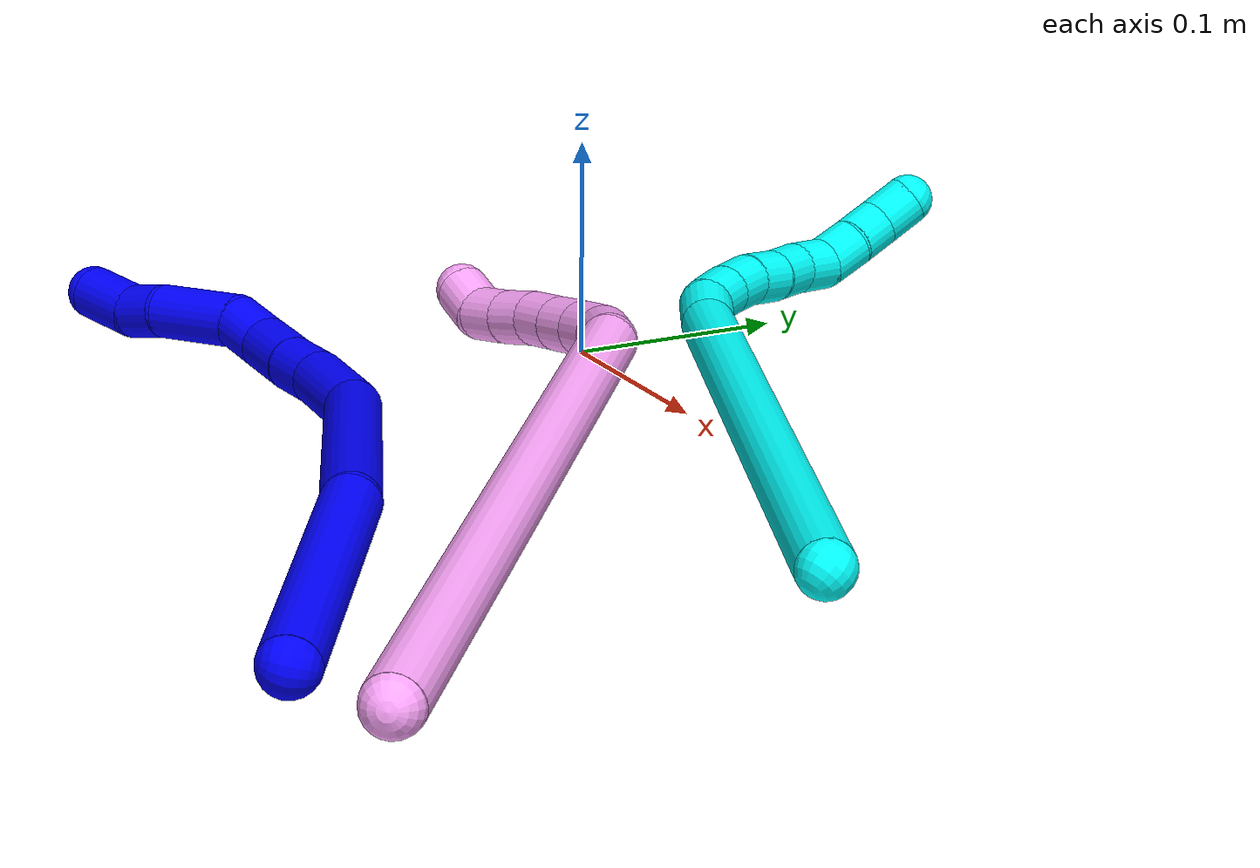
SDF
<sdf version="1.7">
 <world name="default">
  <model name="1">
   <static>0</static>
   <link name="1">
    <collision name="collision-cylinder-e_1_1_4">
     <pose>-0.056657 0.025792 0.006387 -1.32805 -1.13228 0.923055</pose>
     <geometry><cylinder><radius>0.0125</radius><length>0.125157</length></cylinder></geometry>
     <surface>
      <friction><ode><mu>1.16</mu><mu2>1.16</mu2><slip1>0</slip1><slip2>0</slip2></ode></friction>
      <contact><ode><kp>1e+06</kp><kd>1</kd><max_vel>0</max_vel><min_depth>0.001</min_depth></ode></contact>
     </surface>
    </collision>
    <visual name="visual-cylinder-e_1_1_4">
     <pose>-0.056657 0.025792 0.006387 -1.32805 -1.13228 0.923055</pose>
     <geometry><cylinder><radius>0.0125</radius><length>0.125157</length></cylinder></geometry>
     <material><ambient>0 0 1 1</ambient></material>
    </visual>
    <collision name="collision-cylinder-e_2_4_5">
     <pose>-0.173585 0.099635 0.01163 -1.5946 -0.897582 0.916332</pose>
     <geometry><cylinder><radius>0.0125</radius><length>0.154178</length></cylinder></geometry>
     <surface>
      <friction><ode><mu>1.16</mu><mu2>1.16</mu2><slip1>0</slip1><slip2>0</slip2></ode></friction>
      <contact><ode><kp>1e+06</kp><kd>1</kd><max_vel>0</max_vel><min_depth>0.001</min_depth></ode></contact>
     </surface>
    </collision>
    <visual name="visual-cylinder-e_2_4_5">
     <pose>-0.173585 0.099635 0.01163 -1.5946 -0.897582 0.916332</pose>
     <geometry><cylinder><radius>0.0125</radius><length>0.154178</length></cylinder></geometry>
     <material><ambient>0 0 1 1</ambient></material>
    </visual>
    <collision name="collision-cylinder-e_3_5_6">
     <pose>-0.250942 0.16202 0.002425 -2.08304 -0.804567 1.25776</pose>
     <geometry><cylinder><radius>0.0125</radius><length>0.047431</length></cylinder></geometry>
     <surface>
      <friction><ode><mu>1.16</mu><mu2>1.16</mu2><slip1>0</slip1><slip2>0</slip2></ode></friction>
      <contact><ode><kp>1e+06</kp><kd>1</kd><max_vel>0</max_vel><min_depth>0.001</min_depth></ode></contact>
     </surface>
    </collision>
    <visual name="visual-cylinder-e_3_5_6">
     <pose>-0.250942 0.16202 0.002425 -2.08304 -0.804567 1.25776</pose>
     <geometry><cylinder><radius>0.0125</radius><length>0.047431</length></cylinder></geometry>
     <material><ambient>0 0 1 1</ambient></material>
    </visual>
    <collision name="collision-cylinder-e_4_6_7">
     <pose>-0.276052 0.1834 -0.011711 -2.28245 -0.711563 1.36301</pose>
     <geometry><cylinder><radius>0.0125</radius><length>0.02457</length></cylinder></geometry>
     <surface>
      <friction><ode><mu>1.16</mu><mu2>1.16</mu2><slip1>0</slip1><slip2>0</slip2></ode></friction>
      <contact><ode><kp>1e+06</kp><kd>1</kd><max_vel>0</max_vel><min_depth>0.001</min_depth></ode></contact>
     </surface>
    </collision>
    <visual name="visual-cylinder-e_4_6_7">
     <pose>-0.276052 0.1834 -0.011711 -2.28245 -0.711563 1.36301</pose>
     <geometry><cylinder><radius>0.0125</radius><length>0.02457</length></cylinder></geometry>
     <material><ambient>0 0 1 1</ambient></material>
    </visual>
    <collision name="collision-cylinder-e_5_7_8">
     <pose>-0.295302 0.199376 -0.024689 -2.22876 -0.782793 1.39792</pose>
     <geometry><cylinder><radius>0.0125</radius><length>0.031841</length></cylinder></geometry>
     <surface>
      <friction><ode><mu>1.16</mu><mu2>1.16</mu2><slip1>0</slip1><slip2>0</slip2></ode></friction>
      <contact><ode><kp>1e+06</kp><kd>1</kd><max_vel>0</max_vel><min_depth>0.001</min_depth></ode></contact>
     </surface>
    </collision>
    <visual name="visual-cylinder-e_5_7_8">
     <pose>-0.295302 0.199376 -0.024689 -2.22876 -0.782793 1.39792</pose>
     <geometry><cylinder><radius>0.0125</radius><length>0.031841</length></cylinder></geometry>
     <material><ambient>0 0 1 1</ambient></material>
    </visual>
    <collision name="collision-cylinder-e_6_8_9">
     <pose>-0.314016 0.212004 -0.03906 -2.68192 -0.731822 2.0452</pose>
     <geometry><cylinder><radius>0.0125</radius><length>0.022403</length></cylinder></geometry>
     <surface>
      <friction><ode><mu>1.16</mu><mu2>1.16</mu2><slip1>0</slip1><slip2>0</slip2></ode></friction>
      <contact><ode><kp>1e+06</kp><kd>1</kd><max_vel>0</max_vel><min_depth>0.001</min_depth></ode></contact>
     </surface>
    </collision>
    <visual name="visual-cylinder-e_6_8_9">
     <pose>-0.314016 0.212004 -0.03906 -2.68192 -0.731822 2.0452</pose>
     <geometry><cylinder><radius>0.0125</radius><length>0.022403</length></cylinder></geometry>
     <material><ambient>0 0 1 1</ambient></material>
    </visual>
    <collision name="collision-cylinder-e_7_9_10">
     <pose>-0.328089 0.226211 -0.063631 -2.59058 -0.31712 1.02954</pose>
     <geometry><cylinder><radius>0.0125</radius><length>0.042254</length></cylinder></geometry>
     <surface>
      <friction><ode><mu>1.16</mu><mu2>1.16</mu2><slip1>0</slip1><slip2>0</slip2></ode></friction>
      <contact><ode><kp>1e+06</kp><kd>1</kd><max_vel>0</max_vel><min_depth>0.001</min_depth></ode></contact>
     </surface>
    </collision>
    <visual name="visual-cylinder-e_7_9_10">
     <pose>-0.328089 0.226211 -0.063631 -2.59058 -0.31712 1.02954</pose>
     <geometry><cylinder><radius>0.0125</radius><length>0.042254</length></cylinder></geometry>
     <material><ambient>0 0 1 1</ambient></material>
    </visual>
    <collision name="collision-cylinder-e_8_10_11">
     <pose>-0.338209 0.243667 -0.087739 -2.36043 -0.343835 0.798159</pose>
     <geometry><cylinder><radius>0.0125</radius><length>0.020959</length></cylinder></geometry>
     <surface>
      <friction><ode><mu>1.16</mu><mu2>1.16</mu2><slip1>0</slip1><slip2>0</slip2></ode></friction>
      <contact><ode><kp>1e+06</kp><kd>1</kd><max_vel>0</max_vel><min_depth>0.001</min_depth></ode></contact>
     </surface>
    </collision>
    <visual name="visual-cylinder-e_8_10_11">
     <pose>-0.338209 0.243667 -0.087739 -2.36043 -0.343835 0.798159</pose>
     <geometry><cylinder><radius>0.0125</radius><length>0.020959</length></cylinder></geometry>
     <material><ambient>0 0 1 1</ambient></material>
    </visual>
    <collision name="collision-cylinder-e_9_11_2">
     <pose>-0.350535 0.257848 -0.105414 -2.54574 -0.598605 1.5757</pose>
     <geometry><cylinder><radius>0.0125</radius><length>0.031208</length></cylinder></geometry>
     <surface>
      <friction><ode><mu>1.16</mu><mu2>1.16</mu2><slip1>0</slip1><slip2>0</slip2></ode></friction>
      <contact><ode><kp>1e+06</kp><kd>1</kd><max_vel>0</max_vel><min_depth>0.001</min_depth></ode></contact>
     </surface>
    </collision>
    <visual name="visual-cylinder-e_9_11_2">
     <pose>-0.350535 0.257848 -0.105414 -2.54574 -0.598605 1.5757</pose>
     <geometry><cylinder><radius>0.0125</radius><length>0.031208</length></cylinder></geometry>
     <material><ambient>0 0 1 1</ambient></material>
    </visual>
    <collision name="collision-sphere-2">
     <pose>-0.359327 0.265082 -0.116084 0 -0 0</pose>
     <geometry><sphere><radius>0.0125</radius></sphere></geometry>
     <surface>
      <friction><ode><mu>1.16</mu><mu2>1.16</mu2><slip1>0</slip1><slip2>0</slip2></ode></friction>
      <contact><ode><kp>1e+06</kp><kd>1</kd><max_vel>0</max_vel><min_depth>0.001</min_depth></ode></contact>
     </surface>
    </collision>
    <visual name="visual-sphere-2">
     <pose>-0.359327 0.265082 -0.116084 0 -0 0</pose>
     <geometry><sphere><radius>0.0125</radius></sphere></geometry>
     <material><ambient>0 0 1 1</ambient></material>
    </visual>
    <collision name="collision-sphere-11">
     <pose>-0.341742 0.250613 -0.094745 0 -0 0</pose>
     <geometry><sphere><radius>0.0125</radius></sphere></geometry>
     <surface>
      <friction><ode><mu>1.16</mu><mu2>1.16</mu2><slip1>0</slip1><slip2>0</slip2></ode></friction>
      <contact><ode><kp>1e+06</kp><kd>1</kd><max_vel>0</max_vel><min_depth>0.001</min_depth></ode></contact>
     </surface>
    </collision>
    <visual name="visual-sphere-11">
     <pose>-0.341742 0.250613 -0.094745 0 -0 0</pose>
     <geometry><sphere><radius>0.0125</radius></sphere></geometry>
     <material><ambient>0 0 1 1</ambient></material>
    </visual>
    <collision name="collision-sphere-10">
     <pose>-0.334677 0.23672 -0.080733 0 -0 0</pose>
     <geometry><sphere><radius>0.0125</radius></sphere></geometry>
     <surface>
      <friction><ode><mu>1.16</mu><mu2>1.16</mu2><slip1>0</slip1><slip2>0</slip2></ode></friction>
      <contact><ode><kp>1e+06</kp><kd>1</kd><max_vel>0</max_vel><min_depth>0.001</min_depth></ode></contact>
     </surface>
    </collision>
    <visual name="visual-sphere-10">
     <pose>-0.334677 0.23672 -0.080733 0 -0 0</pose>
     <geometry><sphere><radius>0.0125</radius></sphere></geometry>
     <material><ambient>0 0 1 1</ambient></material>
    </visual>
    <collision name="collision-sphere-9">
     <pose>-0.321501 0.215701 -0.046528 0 -0 0</pose>
     <geometry><sphere><radius>0.0125</radius></sphere></geometry>
     <surface>
      <friction><ode><mu>1.16</mu><mu2>1.16</mu2><slip1>0</slip1><slip2>0</slip2></ode></friction>
      <contact><ode><kp>1e+06</kp><kd>1</kd><max_vel>0</max_vel><min_depth>0.001</min_depth></ode></contact>
     </surface>
    </collision>
    <visual name="visual-sphere-9">
     <pose>-0.321501 0.215701 -0.046528 0 -0 0</pose>
     <geometry><sphere><radius>0.0125</radius></sphere></geometry>
     <material><ambient>0 0 1 1</ambient></material>
    </visual>
    <collision name="collision-sphere-4">
     <pose>-0.113315 0.051583 0.012774 0 -0 0</pose>
     <geometry><sphere><radius>0.0125</radius></sphere></geometry>
     <surface>
      <friction><ode><mu>1.16</mu><mu2>1.16</mu2><slip1>0</slip1><slip2>0</slip2></ode></friction>
      <contact><ode><kp>1e+06</kp><kd>1</kd><max_vel>0</max_vel><min_depth>0.001</min_depth></ode></contact>
     </surface>
    </collision>
    <visual name="visual-sphere-4">
     <pose>-0.113315 0.051583 0.012774 0 -0 0</pose>
     <geometry><sphere><radius>0.0125</radius></sphere></geometry>
     <material><ambient>0 0 1 1</ambient></material>
    </visual>
    <collision name="collision-sphere-1">
     <geometry><sphere><radius>0.0125</radius></sphere></geometry>
     <surface>
      <friction><ode><mu>1.16</mu><mu2>1.16</mu2><slip1>0</slip1><slip2>0</slip2></ode></friction>
      <contact><ode><kp>1e+06</kp><kd>1</kd><max_vel>0</max_vel><min_depth>0.001</min_depth></ode></contact>
     </surface>
    </collision>
    <visual name="visual-sphere-1">
     <geometry><sphere><radius>0.0125</radius></sphere></geometry>
     <material><ambient>0 0 1 1</ambient></material>
    </visual>
    <collision name="collision-sphere-8">
     <pose>-0.30653 0.208307 -0.031591 0 -0 0</pose>
     <geometry><sphere><radius>0.0125</radius></sphere></geometry>
     <surface>
      <friction><ode><mu>1.16</mu><mu2>1.16</mu2><slip1>0</slip1><slip2>0</slip2></ode></friction>
      <contact><ode><kp>1e+06</kp><kd>1</kd><max_vel>0</max_vel><min_depth>0.001</min_depth></ode></contact>
     </surface>
    </collision>
    <visual name="visual-sphere-8">
     <pose>-0.30653 0.208307 -0.031591 0 -0 0</pose>
     <geometry><sphere><radius>0.0125</radius></sphere></geometry>
     <material><ambient>0 0 1 1</ambient></material>
    </visual>
    <collision name="collision-sphere-5">
     <pose>-0.233854 0.147686 0.010486 0 -0 0</pose>
     <geometry><sphere><radius>0.0125</radius></sphere></geometry>
     <surface>
      <friction><ode><mu>1.16</mu><mu2>1.16</mu2><slip1>0</slip1><slip2>0</slip2></ode></friction>
      <contact><ode><kp>1e+06</kp><kd>1</kd><max_vel>0</max_vel><min_depth>0.001</min_depth></ode></contact>
     </surface>
    </collision>
    <visual name="visual-sphere-5">
     <pose>-0.233854 0.147686 0.010486 0 -0 0</pose>
     <geometry><sphere><radius>0.0125</radius></sphere></geometry>
     <material><ambient>0 0 1 1</ambient></material>
    </visual>
    <collision name="collision-sphere-6">
     <pose>-0.268029 0.176354 -0.005635 0 -0 0</pose>
     <geometry><sphere><radius>0.0125</radius></sphere></geometry>
     <surface>
      <friction><ode><mu>1.16</mu><mu2>1.16</mu2><slip1>0</slip1><slip2>0</slip2></ode></friction>
      <contact><ode><kp>1e+06</kp><kd>1</kd><max_vel>0</max_vel><min_depth>0.001</min_depth></ode></contact>
     </surface>
    </collision>
    <visual name="visual-sphere-6">
     <pose>-0.268029 0.176354 -0.005635 0 -0 0</pose>
     <geometry><sphere><radius>0.0125</radius></sphere></geometry>
     <material><ambient>0 0 1 1</ambient></material>
    </visual>
    <collision name="collision-sphere-7">
     <pose>-0.284074 0.190446 -0.017787 0 -0 0</pose>
     <geometry><sphere><radius>0.0125</radius></sphere></geometry>
     <surface>
      <friction><ode><mu>1.16</mu><mu2>1.16</mu2><slip1>0</slip1><slip2>0</slip2></ode></friction>
      <contact><ode><kp>1e+06</kp><kd>1</kd><max_vel>0</max_vel><min_depth>0.001</min_depth></ode></contact>
     </surface>
    </collision>
    <visual name="visual-sphere-7">
     <pose>-0.284074 0.190446 -0.017787 0 -0 0</pose>
     <geometry><sphere><radius>0.0125</radius></sphere></geometry>
     <material><ambient>0 0 1 1</ambient></material>
    </visual>
    <inertial>
     <pose>-0.201735 0.129181 -0.014118 0 -0 0</pose>
     <mass>0.5</mass>
     <inertia>
      <ixx>0.000375</ixx>
      <ixy>0</ixy>
      <ixz>0</ixz>
      <iyy>0.000593</iyy>
      <iyz>0</iyz>
      <izz>0.000124</izz>
     </inertia>
    </inertial>
   </link>
   <pose>0.306518 -0.275424 0.0115 -1.85478 0.561864 -0.61046</pose>
  </model>
  <model name="3">
   <static>0</static>
   <link name="3">
    <collision name="collision-cylinder-e_1_1_4">
     <pose>-0.130202 0.056886 0.065274 -0.716845 -0.983953 0.396254</pose>
     <geometry><cylinder><radius>0.0125</radius><length>0.312724</length></cylinder></geometry>
     <surface>
      <friction><ode><mu>1.16</mu><mu2>1.16</mu2><slip1>0</slip1><slip2>0</slip2></ode></friction>
      <contact><ode><kp>1e+06</kp><kd>1</kd><max_vel>0</max_vel><min_depth>0.001</min_depth></ode></contact>
     </surface>
    </collision>
    <visual name="visual-cylinder-e_1_1_4">
     <pose>-0.130202 0.056886 0.065274 -0.716845 -0.983953 0.396254</pose>
     <geometry><cylinder><radius>0.0125</radius><length>0.312724</length></cylinder></geometry>
     <material><ambient>0.003922 1 0.996078 1</ambient></material>
    </visual>
    <collision name="collision-cylinder-e_2_4_5">
     <pose>-0.269937 0.118019 0.137165 -0.570523 -0.881081 0.274767</pose>
     <geometry><cylinder><radius>0.0125</radius><length>0.024717</length></cylinder></geometry>
     <surface>
      <friction><ode><mu>1.16</mu><mu2>1.16</mu2><slip1>0</slip1><slip2>0</slip2></ode></friction>
      <contact><ode><kp>1e+06</kp><kd>1</kd><max_vel>0</max_vel><min_depth>0.001</min_depth></ode></contact>
     </surface>
    </collision>
    <visual name="visual-cylinder-e_2_4_5">
     <pose>-0.269937 0.118019 0.137165 -0.570523 -0.881081 0.274767</pose>
     <geometry><cylinder><radius>0.0125</radius><length>0.024717</length></cylinder></geometry>
     <material><ambient>0.003922 1 0.996078 1</ambient></material>
    </visual>
    <collision name="collision-cylinder-e_3_5_6">
     <pose>-0.283347 0.128082 0.151321 -0.657228 -0.386729 0.133336</pose>
     <geometry><cylinder><radius>0.0125</radius><length>0.020559</length></cylinder></geometry>
     <surface>
      <friction><ode><mu>1.16</mu><mu2>1.16</mu2><slip1>0</slip1><slip2>0</slip2></ode></friction>
      <contact><ode><kp>1e+06</kp><kd>1</kd><max_vel>0</max_vel><min_depth>0.001</min_depth></ode></contact>
     </surface>
    </collision>
    <visual name="visual-cylinder-e_3_5_6">
     <pose>-0.283347 0.128082 0.151321 -0.657228 -0.386729 0.133336</pose>
     <geometry><cylinder><radius>0.0125</radius><length>0.020559</length></cylinder></geometry>
     <material><ambient>0.003922 1 0.996078 1</ambient></material>
    </visual>
    <collision name="collision-cylinder-e_4_6_7">
     <pose>-0.290229 0.140226 0.166461 -0.694114 -0.294932 0.107353</pose>
     <geometry><cylinder><radius>0.0125</radius><length>0.020677</length></cylinder></geometry>
     <surface>
      <friction><ode><mu>1.16</mu><mu2>1.16</mu2><slip1>0</slip1><slip2>0</slip2></ode></friction>
      <contact><ode><kp>1e+06</kp><kd>1</kd><max_vel>0</max_vel><min_depth>0.001</min_depth></ode></contact>
     </surface>
    </collision>
    <visual name="visual-cylinder-e_4_6_7">
     <pose>-0.290229 0.140226 0.166461 -0.694114 -0.294932 0.107353</pose>
     <geometry><cylinder><radius>0.0125</radius><length>0.020677</length></cylinder></geometry>
     <material><ambient>0.003922 1 0.996078 1</ambient></material>
    </visual>
    <collision name="collision-cylinder-e_5_7_8">
     <pose>-0.294928 0.154043 0.180759 -0.841339 -0.167064 0.07488</pose>
     <geometry><cylinder><radius>0.0125</radius><length>0.020373</length></cylinder></geometry>
     <surface>
      <friction><ode><mu>1.16</mu><mu2>1.16</mu2><slip1>0</slip1><slip2>0</slip2></ode></friction>
      <contact><ode><kp>1e+06</kp><kd>1</kd><max_vel>0</max_vel><min_depth>0.001</min_depth></ode></contact>
     </surface>
    </collision>
    <visual name="visual-cylinder-e_5_7_8">
     <pose>-0.294928 0.154043 0.180759 -0.841339 -0.167064 0.07488</pose>
     <geometry><cylinder><radius>0.0125</radius><length>0.020373</length></cylinder></geometry>
     <material><ambient>0.003922 1 0.996078 1</ambient></material>
    </visual>
    <collision name="collision-cylinder-e_6_8_9">
     <pose>-0.299207 0.168179 0.194467 -0.758597 -0.261395 0.104694</pose>
     <geometry><cylinder><radius>0.0125</radius><length>0.020006</length></cylinder></geometry>
     <surface>
      <friction><ode><mu>1.16</mu><mu2>1.16</mu2><slip1>0</slip1><slip2>0</slip2></ode></friction>
      <contact><ode><kp>1e+06</kp><kd>1</kd><max_vel>0</max_vel><min_depth>0.001</min_depth></ode></contact>
     </surface>
    </collision>
    <visual name="visual-cylinder-e_6_8_9">
     <pose>-0.299207 0.168179 0.194467 -0.758597 -0.261395 0.104694</pose>
     <geometry><cylinder><radius>0.0125</radius><length>0.020006</length></cylinder></geometry>
     <material><ambient>0.003922 1 0.996078 1</ambient></material>
    </visual>
    <collision name="collision-cylinder-e_7_9_10">
     <pose>-0.302418 0.182111 0.208759 -0.785794 -0.060696 0.025162</pose>
     <geometry><cylinder><radius>0.0125</radius><length>0.020633</length></cylinder></geometry>
     <surface>
      <friction><ode><mu>1.16</mu><mu2>1.16</mu2><slip1>0</slip1><slip2>0</slip2></ode></friction>
      <contact><ode><kp>1e+06</kp><kd>1</kd><max_vel>0</max_vel><min_depth>0.001</min_depth></ode></contact>
     </surface>
    </collision>
    <visual name="visual-cylinder-e_7_9_10">
     <pose>-0.302418 0.182111 0.208759 -0.785794 -0.060696 0.025162</pose>
     <geometry><cylinder><radius>0.0125</radius><length>0.020633</length></cylinder></geometry>
     <material><ambient>0.003922 1 0.996078 1</ambient></material>
    </visual>
    <collision name="collision-cylinder-e_8_10_11">
     <pose>-0.302711 0.1927 0.225587 -0.333167 0.032924 -0.005536</pose>
     <geometry><cylinder><radius>0.0125</radius><length>0.020221</length></cylinder></geometry>
     <surface>
      <friction><ode><mu>1.16</mu><mu2>1.16</mu2><slip1>0</slip1><slip2>0</slip2></ode></friction>
      <contact><ode><kp>1e+06</kp><kd>1</kd><max_vel>0</max_vel><min_depth>0.001</min_depth></ode></contact>
     </surface>
    </collision>
    <visual name="visual-cylinder-e_8_10_11">
     <pose>-0.302711 0.1927 0.225587 -0.333167 0.032924 -0.005536</pose>
     <geometry><cylinder><radius>0.0125</radius><length>0.020221</length></cylinder></geometry>
     <material><ambient>0.003922 1 0.996078 1</ambient></material>
    </visual>
    <collision name="collision-cylinder-e_9_11_12">
     <pose>-0.303257 0.199831 0.24437 -0.392885 -0.087689 0.017462</pose>
     <geometry><cylinder><radius>0.0125</radius><length>0.020067</length></cylinder></geometry>
     <surface>
      <friction><ode><mu>1.16</mu><mu2>1.16</mu2><slip1>0</slip1><slip2>0</slip2></ode></friction>
      <contact><ode><kp>1e+06</kp><kd>1</kd><max_vel>0</max_vel><min_depth>0.001</min_depth></ode></contact>
     </surface>
    </collision>
    <visual name="visual-cylinder-e_9_11_12">
     <pose>-0.303257 0.199831 0.24437 -0.392885 -0.087689 0.017462</pose>
     <geometry><cylinder><radius>0.0125</radius><length>0.020067</length></cylinder></geometry>
     <material><ambient>0.003922 1 0.996078 1</ambient></material>
    </visual>
    <collision name="collision-cylinder-e_10_12_2">
     <pose>-0.302075 0.205246 0.263271 -0.162795 0.207368 -0.016977</pose>
     <geometry><cylinder><radius>0.0125</radius><length>0.020023</length></cylinder></geometry>
     <surface>
      <friction><ode><mu>1.16</mu><mu2>1.16</mu2><slip1>0</slip1><slip2>0</slip2></ode></friction>
      <contact><ode><kp>1e+06</kp><kd>1</kd><max_vel>0</max_vel><min_depth>0.001</min_depth></ode></contact>
     </surface>
    </collision>
    <visual name="visual-cylinder-e_10_12_2">
     <pose>-0.302075 0.205246 0.263271 -0.162795 0.207368 -0.016977</pose>
     <geometry><cylinder><radius>0.0125</radius><length>0.020023</length></cylinder></geometry>
     <material><ambient>0.003922 1 0.996078 1</ambient></material>
    </visual>
    <collision name="collision-sphere-2">
     <pose>-0.300013 0.206834 0.272938 0 -0 0</pose>
     <geometry><sphere><radius>0.0125</radius></sphere></geometry>
     <surface>
      <friction><ode><mu>1.16</mu><mu2>1.16</mu2><slip1>0</slip1><slip2>0</slip2></ode></friction>
      <contact><ode><kp>1e+06</kp><kd>1</kd><max_vel>0</max_vel><min_depth>0.001</min_depth></ode></contact>
     </surface>
    </collision>
    <visual name="visual-sphere-2">
     <pose>-0.300013 0.206834 0.272938 0 -0 0</pose>
     <geometry><sphere><radius>0.0125</radius></sphere></geometry>
     <material><ambient>0.003922 1 0.996078 1</ambient></material>
    </visual>
    <collision name="collision-sphere-12">
     <pose>-0.304136 0.203658 0.253603 0 -0 0</pose>
     <geometry><sphere><radius>0.0125</radius></sphere></geometry>
     <surface>
      <friction><ode><mu>1.16</mu><mu2>1.16</mu2><slip1>0</slip1><slip2>0</slip2></ode></friction>
      <contact><ode><kp>1e+06</kp><kd>1</kd><max_vel>0</max_vel><min_depth>0.001</min_depth></ode></contact>
     </surface>
    </collision>
    <visual name="visual-sphere-12">
     <pose>-0.304136 0.203658 0.253603 0 -0 0</pose>
     <geometry><sphere><radius>0.0125</radius></sphere></geometry>
     <material><ambient>0.003922 1 0.996078 1</ambient></material>
    </visual>
    <collision name="collision-sphere-11">
     <pose>-0.302378 0.196005 0.235136 0 -0 0</pose>
     <geometry><sphere><radius>0.0125</radius></sphere></geometry>
     <surface>
      <friction><ode><mu>1.16</mu><mu2>1.16</mu2><slip1>0</slip1><slip2>0</slip2></ode></friction>
      <contact><ode><kp>1e+06</kp><kd>1</kd><max_vel>0</max_vel><min_depth>0.001</min_depth></ode></contact>
     </surface>
    </collision>
    <visual name="visual-sphere-11">
     <pose>-0.302378 0.196005 0.235136 0 -0 0</pose>
     <geometry><sphere><radius>0.0125</radius></sphere></geometry>
     <material><ambient>0.003922 1 0.996078 1</ambient></material>
    </visual>
    <collision name="collision-sphere-10">
     <pose>-0.303044 0.189395 0.216038 0 -0 0</pose>
     <geometry><sphere><radius>0.0125</radius></sphere></geometry>
     <surface>
      <friction><ode><mu>1.16</mu><mu2>1.16</mu2><slip1>0</slip1><slip2>0</slip2></ode></friction>
      <contact><ode><kp>1e+06</kp><kd>1</kd><max_vel>0</max_vel><min_depth>0.001</min_depth></ode></contact>
     </surface>
    </collision>
    <visual name="visual-sphere-10">
     <pose>-0.303044 0.189395 0.216038 0 -0 0</pose>
     <geometry><sphere><radius>0.0125</radius></sphere></geometry>
     <material><ambient>0.003922 1 0.996078 1</ambient></material>
    </visual>
    <collision name="collision-sphere-9">
     <pose>-0.301792 0.174827 0.201481 0 -0 0</pose>
     <geometry><sphere><radius>0.0125</radius></sphere></geometry>
     <surface>
      <friction><ode><mu>1.16</mu><mu2>1.16</mu2><slip1>0</slip1><slip2>0</slip2></ode></friction>
      <contact><ode><kp>1e+06</kp><kd>1</kd><max_vel>0</max_vel><min_depth>0.001</min_depth></ode></contact>
     </surface>
    </collision>
    <visual name="visual-sphere-9">
     <pose>-0.301792 0.174827 0.201481 0 -0 0</pose>
     <geometry><sphere><radius>0.0125</radius></sphere></geometry>
     <material><ambient>0.003922 1 0.996078 1</ambient></material>
    </visual>
    <collision name="collision-sphere-4">
     <pose>-0.260403 0.113772 0.130547 0 -0 0</pose>
     <geometry><sphere><radius>0.0125</radius></sphere></geometry>
     <surface>
      <friction><ode><mu>1.16</mu><mu2>1.16</mu2><slip1>0</slip1><slip2>0</slip2></ode></friction>
      <contact><ode><kp>1e+06</kp><kd>1</kd><max_vel>0</max_vel><min_depth>0.001</min_depth></ode></contact>
     </surface>
    </collision>
    <visual name="visual-sphere-4">
     <pose>-0.260403 0.113772 0.130547 0 -0 0</pose>
     <geometry><sphere><radius>0.0125</radius></sphere></geometry>
     <material><ambient>0.003922 1 0.996078 1</ambient></material>
    </visual>
    <collision name="collision-sphere-1">
     <geometry><sphere><radius>0.0125</radius></sphere></geometry>
     <surface>
      <friction><ode><mu>1.16</mu><mu2>1.16</mu2><slip1>0</slip1><slip2>0</slip2></ode></friction>
      <contact><ode><kp>1e+06</kp><kd>1</kd><max_vel>0</max_vel><min_depth>0.001</min_depth></ode></contact>
     </surface>
    </collision>
    <visual name="visual-sphere-1">
     <geometry><sphere><radius>0.0125</radius></sphere></geometry>
     <material><ambient>0.003922 1 0.996078 1</ambient></material>
    </visual>
    <collision name="collision-sphere-8">
     <pose>-0.296622 0.161532 0.187453 0 -0 0</pose>
     <geometry><sphere><radius>0.0125</radius></sphere></geometry>
     <surface>
      <friction><ode><mu>1.16</mu><mu2>1.16</mu2><slip1>0</slip1><slip2>0</slip2></ode></friction>
      <contact><ode><kp>1e+06</kp><kd>1</kd><max_vel>0</max_vel><min_depth>0.001</min_depth></ode></contact>
     </surface>
    </collision>
    <visual name="visual-sphere-8">
     <pose>-0.296622 0.161532 0.187453 0 -0 0</pose>
     <geometry><sphere><radius>0.0125</radius></sphere></geometry>
     <material><ambient>0.003922 1 0.996078 1</ambient></material>
    </visual>
    <collision name="collision-sphere-5">
     <pose>-0.27947 0.122266 0.143784 0 -0 0</pose>
     <geometry><sphere><radius>0.0125</radius></sphere></geometry>
     <surface>
      <friction><ode><mu>1.16</mu><mu2>1.16</mu2><slip1>0</slip1><slip2>0</slip2></ode></friction>
      <contact><ode><kp>1e+06</kp><kd>1</kd><max_vel>0</max_vel><min_depth>0.001</min_depth></ode></contact>
     </surface>
    </collision>
    <visual name="visual-sphere-5">
     <pose>-0.27947 0.122266 0.143784 0 -0 0</pose>
     <geometry><sphere><radius>0.0125</radius></sphere></geometry>
     <material><ambient>0.003922 1 0.996078 1</ambient></material>
    </visual>
    <collision name="collision-sphere-6">
     <pose>-0.287224 0.133898 0.158858 0 -0 0</pose>
     <geometry><sphere><radius>0.0125</radius></sphere></geometry>
     <surface>
      <friction><ode><mu>1.16</mu><mu2>1.16</mu2><slip1>0</slip1><slip2>0</slip2></ode></friction>
      <contact><ode><kp>1e+06</kp><kd>1</kd><max_vel>0</max_vel><min_depth>0.001</min_depth></ode></contact>
     </surface>
    </collision>
    <visual name="visual-sphere-6">
     <pose>-0.287224 0.133898 0.158858 0 -0 0</pose>
     <geometry><sphere><radius>0.0125</radius></sphere></geometry>
     <material><ambient>0.003922 1 0.996078 1</ambient></material>
    </visual>
    <collision name="collision-sphere-7">
     <pose>-0.293234 0.146554 0.174064 0 -0 0</pose>
     <geometry><sphere><radius>0.0125</radius></sphere></geometry>
     <surface>
      <friction><ode><mu>1.16</mu><mu2>1.16</mu2><slip1>0</slip1><slip2>0</slip2></ode></friction>
      <contact><ode><kp>1e+06</kp><kd>1</kd><max_vel>0</max_vel><min_depth>0.001</min_depth></ode></contact>
     </surface>
    </collision>
    <visual name="visual-sphere-7">
     <pose>-0.293234 0.146554 0.174064 0 -0 0</pose>
     <geometry><sphere><radius>0.0125</radius></sphere></geometry>
     <material><ambient>0.003922 1 0.996078 1</ambient></material>
    </visual>
    <inertial>
     <pose>-0.19141 0.097032 0.113946 0 -0 0</pose>
     <mass>0.5</mass>
     <inertia>
      <ixx>0.001846</ixx>
      <ixy>0</ixy>
      <ixz>0</ixz>
      <iyy>0.002898</iyy>
      <iyz>0</iyz>
      <izz>0.001218</izz>
     </inertia>
    </inertial>
   </link>
   <pose>0.313806 -0.060089 0.012427 -0.85597 0.001535 0.21163</pose>
  </model>
  <model name="4">
   <static>0</static>
   <link name="4">
    <collision name="collision-cylinder-e_1_1_4">
     <pose>0.018401 0.044846 -0.16398 -2.87464 0.107822 -0.764256</pose>
     <geometry><cylinder><radius>0.0125</radius><length>0.341989</length></cylinder></geometry>
     <surface>
      <friction><ode><mu>1.16</mu><mu2>1.16</mu2><slip1>0</slip1><slip2>0</slip2></ode></friction>
      <contact><ode><kp>1e+06</kp><kd>1</kd><max_vel>0</max_vel><min_depth>0.001</min_depth></ode></contact>
     </surface>
    </collision>
    <visual name="visual-cylinder-e_1_1_4">
     <pose>0.018401 0.044846 -0.16398 -2.87464 0.107822 -0.764256</pose>
     <geometry><cylinder><radius>0.0125</radius><length>0.341989</length></cylinder></geometry>
     <material><ambient>1 0.65098 0.996078 1</ambient></material>
    </visual>
    <collision name="collision-cylinder-e_2_4_5">
     <pose>0.033844 0.089611 -0.344536 3.13677 -0.176615 -3.08714</pose>
     <geometry><cylinder><radius>0.0125</radius><length>0.033676</length></cylinder></geometry>
     <surface>
      <friction><ode><mu>1.16</mu><mu2>1.16</mu2><slip1>0</slip1><slip2>0</slip2></ode></friction>
      <contact><ode><kp>1e+06</kp><kd>1</kd><max_vel>0</max_vel><min_depth>0.001</min_depth></ode></contact>
     </surface>
    </collision>
    <visual name="visual-cylinder-e_2_4_5">
     <pose>0.033844 0.089611 -0.344536 3.13677 -0.176615 -3.08714</pose>
     <geometry><cylinder><radius>0.0125</radius><length>0.033676</length></cylinder></geometry>
     <material><ambient>1 0.65098 0.996078 1</ambient></material>
    </visual>
    <collision name="collision-cylinder-e_3_5_6">
     <pose>0.025097 0.089447 -0.370458 3.13254 -0.554499 -3.10977</pose>
     <geometry><cylinder><radius>0.0125</radius><length>0.02199</length></cylinder></geometry>
     <surface>
      <friction><ode><mu>1.16</mu><mu2>1.16</mu2><slip1>0</slip1><slip2>0</slip2></ode></friction>
      <contact><ode><kp>1e+06</kp><kd>1</kd><max_vel>0</max_vel><min_depth>0.001</min_depth></ode></contact>
     </surface>
    </collision>
    <visual name="visual-cylinder-e_3_5_6">
     <pose>0.025097 0.089447 -0.370458 3.13254 -0.554499 -3.10977</pose>
     <geometry><cylinder><radius>0.0125</radius><length>0.02199</length></cylinder></geometry>
     <material><ambient>1 0.65098 0.996078 1</ambient></material>
    </visual>
    <collision name="collision-cylinder-e_4_6_7">
     <pose>0.013113 0.089338 -0.388025 3.13865 -0.645829 -3.1328</pose>
     <geometry><cylinder><radius>0.0125</radius><length>0.020584</length></cylinder></geometry>
     <surface>
      <friction><ode><mu>1.16</mu><mu2>1.16</mu2><slip1>0</slip1><slip2>0</slip2></ode></friction>
      <contact><ode><kp>1e+06</kp><kd>1</kd><max_vel>0</max_vel><min_depth>0.001</min_depth></ode></contact>
     </surface>
    </collision>
    <visual name="visual-cylinder-e_4_6_7">
     <pose>0.013113 0.089338 -0.388025 3.13865 -0.645829 -3.1328</pose>
     <geometry><cylinder><radius>0.0125</radius><length>0.020584</length></cylinder></geometry>
     <material><ambient>1 0.65098 0.996078 1</ambient></material>
    </visual>
    <collision name="collision-cylinder-e_5_7_8">
     <pose>0.000446 0.089502 -0.404321 -3.11825 -0.67547 3.07515</pose>
     <geometry><cylinder><radius>0.0125</radius><length>0.020706</length></cylinder></geometry>
     <surface>
      <friction><ode><mu>1.16</mu><mu2>1.16</mu2><slip1>0</slip1><slip2>0</slip2></ode></friction>
      <contact><ode><kp>1e+06</kp><kd>1</kd><max_vel>0</max_vel><min_depth>0.001</min_depth></ode></contact>
     </surface>
    </collision>
    <visual name="visual-cylinder-e_5_7_8">
     <pose>0.000446 0.089502 -0.404321 -3.11825 -0.67547 3.07515</pose>
     <geometry><cylinder><radius>0.0125</radius><length>0.020706</length></cylinder></geometry>
     <material><ambient>1 0.65098 0.996078 1</ambient></material>
    </visual>
    <collision name="collision-cylinder-e_6_8_9">
     <pose>-0.013363 0.089056 -0.4195 3.05235 -0.799623 -2.93105</pose>
     <geometry><cylinder><radius>0.0125</radius><length>0.020457</length></cylinder></geometry>
     <surface>
      <friction><ode><mu>1.16</mu><mu2>1.16</mu2><slip1>0</slip1><slip2>0</slip2></ode></friction>
      <contact><ode><kp>1e+06</kp><kd>1</kd><max_vel>0</max_vel><min_depth>0.001</min_depth></ode></contact>
     </surface>
    </collision>
    <visual name="visual-cylinder-e_6_8_9">
     <pose>-0.013363 0.089056 -0.4195 3.05235 -0.799623 -2.93105</pose>
     <geometry><cylinder><radius>0.0125</radius><length>0.020457</length></cylinder></geometry>
     <material><ambient>1 0.65098 0.996078 1</ambient></material>
    </visual>
    <collision name="collision-cylinder-e_7_9_10">
     <pose>-0.028132 0.088378 -0.43348 3.13538 -0.824101 -3.12738</pose>
     <geometry><cylinder><radius>0.0125</radius><length>0.020259</length></cylinder></geometry>
     <surface>
      <friction><ode><mu>1.16</mu><mu2>1.16</mu2><slip1>0</slip1><slip2>0</slip2></ode></friction>
      <contact><ode><kp>1e+06</kp><kd>1</kd><max_vel>0</max_vel><min_depth>0.001</min_depth></ode></contact>
     </surface>
    </collision>
    <visual name="visual-cylinder-e_7_9_10">
     <pose>-0.028132 0.088378 -0.43348 3.13538 -0.824101 -3.12738</pose>
     <geometry><cylinder><radius>0.0125</radius><length>0.020259</length></cylinder></geometry>
     <material><ambient>1 0.65098 0.996078 1</ambient></material>
    </visual>
    <collision name="collision-cylinder-e_8_10_2">
     <pose>-0.041035 0.092981 -0.447566 -2.56886 -0.567809 1.56167</pose>
     <geometry><cylinder><radius>0.0125</radius><length>0.020339</length></cylinder></geometry>
     <surface>
      <friction><ode><mu>1.16</mu><mu2>1.16</mu2><slip1>0</slip1><slip2>0</slip2></ode></friction>
      <contact><ode><kp>1e+06</kp><kd>1</kd><max_vel>0</max_vel><min_depth>0.001</min_depth></ode></contact>
     </surface>
    </collision>
    <visual name="visual-cylinder-e_8_10_2">
     <pose>-0.041035 0.092981 -0.447566 -2.56886 -0.567809 1.56167</pose>
     <geometry><cylinder><radius>0.0125</radius><length>0.020339</length></cylinder></geometry>
     <material><ambient>1 0.65098 0.996078 1</ambient></material>
    </visual>
    <collision name="collision-sphere-2">
     <pose>-0.046504 0.097628 -0.454771 0 -0 0</pose>
     <geometry><sphere><radius>0.0125</radius></sphere></geometry>
     <surface>
      <friction><ode><mu>1.16</mu><mu2>1.16</mu2><slip1>0</slip1><slip2>0</slip2></ode></friction>
      <contact><ode><kp>1e+06</kp><kd>1</kd><max_vel>0</max_vel><min_depth>0.001</min_depth></ode></contact>
     </surface>
    </collision>
    <visual name="visual-sphere-2">
     <pose>-0.046504 0.097628 -0.454771 0 -0 0</pose>
     <geometry><sphere><radius>0.0125</radius></sphere></geometry>
     <material><ambient>1 0.65098 0.996078 1</ambient></material>
    </visual>
    <collision name="collision-sphere-10">
     <pose>-0.035566 0.088335 -0.44036 0 -0 0</pose>
     <geometry><sphere><radius>0.0125</radius></sphere></geometry>
     <surface>
      <friction><ode><mu>1.16</mu><mu2>1.16</mu2><slip1>0</slip1><slip2>0</slip2></ode></friction>
      <contact><ode><kp>1e+06</kp><kd>1</kd><max_vel>0</max_vel><min_depth>0.001</min_depth></ode></contact>
     </surface>
    </collision>
    <visual name="visual-sphere-10">
     <pose>-0.035566 0.088335 -0.44036 0 -0 0</pose>
     <geometry><sphere><radius>0.0125</radius></sphere></geometry>
     <material><ambient>1 0.65098 0.996078 1</ambient></material>
    </visual>
    <collision name="collision-sphere-9">
     <pose>-0.020697 0.08842 -0.4266 0 -0 0</pose>
     <geometry><sphere><radius>0.0125</radius></sphere></geometry>
     <surface>
      <friction><ode><mu>1.16</mu><mu2>1.16</mu2><slip1>0</slip1><slip2>0</slip2></ode></friction>
      <contact><ode><kp>1e+06</kp><kd>1</kd><max_vel>0</max_vel><min_depth>0.001</min_depth></ode></contact>
     </surface>
    </collision>
    <visual name="visual-sphere-9">
     <pose>-0.020697 0.08842 -0.4266 0 -0 0</pose>
     <geometry><sphere><radius>0.0125</radius></sphere></geometry>
     <material><ambient>1 0.65098 0.996078 1</ambient></material>
    </visual>
    <collision name="collision-sphere-4">
     <pose>0.036802 0.089691 -0.32796 0 -0 0</pose>
     <geometry><sphere><radius>0.0125</radius></sphere></geometry>
     <surface>
      <friction><ode><mu>1.16</mu><mu2>1.16</mu2><slip1>0</slip1><slip2>0</slip2></ode></friction>
      <contact><ode><kp>1e+06</kp><kd>1</kd><max_vel>0</max_vel><min_depth>0.001</min_depth></ode></contact>
     </surface>
    </collision>
    <visual name="visual-sphere-4">
     <pose>0.036802 0.089691 -0.32796 0 -0 0</pose>
     <geometry><sphere><radius>0.0125</radius></sphere></geometry>
     <material><ambient>1 0.65098 0.996078 1</ambient></material>
    </visual>
    <collision name="collision-sphere-1">
     <geometry><sphere><radius>0.0125</radius></sphere></geometry>
     <surface>
      <friction><ode><mu>1.16</mu><mu2>1.16</mu2><slip1>0</slip1><slip2>0</slip2></ode></friction>
      <contact><ode><kp>1e+06</kp><kd>1</kd><max_vel>0</max_vel><min_depth>0.001</min_depth></ode></contact>
     </surface>
    </collision>
    <visual name="visual-sphere-1">
     <geometry><sphere><radius>0.0125</radius></sphere></geometry>
     <material><ambient>1 0.65098 0.996078 1</ambient></material>
    </visual>
    <collision name="collision-sphere-8">
     <pose>-0.006028 0.089691 -0.412399 0 -0 0</pose>
     <geometry><sphere><radius>0.0125</radius></sphere></geometry>
     <surface>
      <friction><ode><mu>1.16</mu><mu2>1.16</mu2><slip1>0</slip1><slip2>0</slip2></ode></friction>
      <contact><ode><kp>1e+06</kp><kd>1</kd><max_vel>0</max_vel><min_depth>0.001</min_depth></ode></contact>
     </surface>
    </collision>
    <visual name="visual-sphere-8">
     <pose>-0.006028 0.089691 -0.412399 0 -0 0</pose>
     <geometry><sphere><radius>0.0125</radius></sphere></geometry>
     <material><ambient>1 0.65098 0.996078 1</ambient></material>
    </visual>
    <collision name="collision-sphere-5">
     <pose>0.030886 0.089531 -0.361111 0 -0 0</pose>
     <geometry><sphere><radius>0.0125</radius></sphere></geometry>
     <surface>
      <friction><ode><mu>1.16</mu><mu2>1.16</mu2><slip1>0</slip1><slip2>0</slip2></ode></friction>
      <contact><ode><kp>1e+06</kp><kd>1</kd><max_vel>0</max_vel><min_depth>0.001</min_depth></ode></contact>
     </surface>
    </collision>
    <visual name="visual-sphere-5">
     <pose>0.030886 0.089531 -0.361111 0 -0 0</pose>
     <geometry><sphere><radius>0.0125</radius></sphere></geometry>
     <material><ambient>1 0.65098 0.996078 1</ambient></material>
    </visual>
    <collision name="collision-sphere-6">
     <pose>0.019308 0.089362 -0.379806 0 -0 0</pose>
     <geometry><sphere><radius>0.0125</radius></sphere></geometry>
     <surface>
      <friction><ode><mu>1.16</mu><mu2>1.16</mu2><slip1>0</slip1><slip2>0</slip2></ode></friction>
      <contact><ode><kp>1e+06</kp><kd>1</kd><max_vel>0</max_vel><min_depth>0.001</min_depth></ode></contact>
     </surface>
    </collision>
    <visual name="visual-sphere-6">
     <pose>0.019308 0.089362 -0.379806 0 -0 0</pose>
     <geometry><sphere><radius>0.0125</radius></sphere></geometry>
     <material><ambient>1 0.65098 0.996078 1</ambient></material>
    </visual>
    <collision name="collision-sphere-7">
     <pose>0.006919 0.089314 -0.396244 0 -0 0</pose>
     <geometry><sphere><radius>0.0125</radius></sphere></geometry>
     <surface>
      <friction><ode><mu>1.16</mu><mu2>1.16</mu2><slip1>0</slip1><slip2>0</slip2></ode></friction>
      <contact><ode><kp>1e+06</kp><kd>1</kd><max_vel>0</max_vel><min_depth>0.001</min_depth></ode></contact>
     </surface>
    </collision>
    <visual name="visual-sphere-7">
     <pose>0.006919 0.089314 -0.396244 0 -0 0</pose>
     <geometry><sphere><radius>0.0125</radius></sphere></geometry>
     <material><ambient>1 0.65098 0.996078 1</ambient></material>
    </visual>
    <inertial>
     <pose>0.013172 0.059034 -0.237308 0 -0 0</pose>
     <mass>0.5</mass>
     <inertia>
      <ixx>8.6e-05</ixx>
      <ixy>0</ixy>
      <ixz>0</ixz>
      <iyy>-0.004546</iyy>
      <iyz>0</iyz>
      <izz>-0.001267</izz>
     </inertia>
    </inertial>
   </link>
   <pose>0.356016 -0.258027 0.012435 1.37723 -0.007703 0.973208</pose>
  </model>
 </world>
</sdf>
